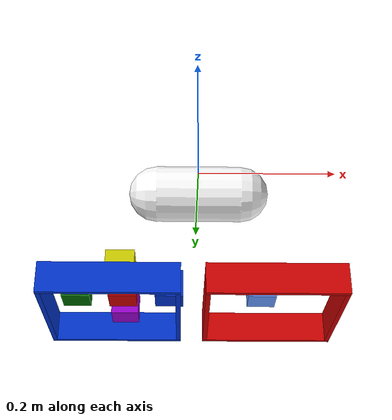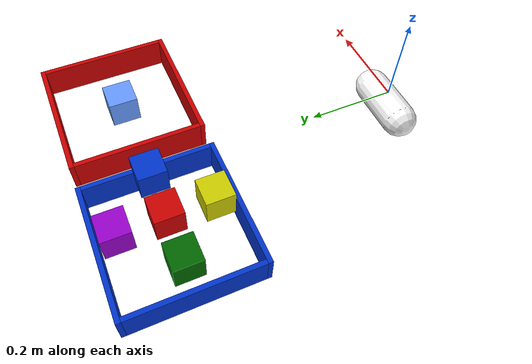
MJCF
<!-- Credit: adapted from Mujoco Menagerie -->
<!-- This might warrant refactoring for code-based XML modification like in AntMaze -->
<mujoco model="panda">
  <compiler angle="radian" meshdir="franka_emika_panda/assets" autolimits="true"/>

  <option integrator="implicitfast" impratio="10"/>

  <default>
    <default class="panda">
      <joint armature="0.1" damping="5" axis="0 0 1" range="-2.8973 2.8973"/>
      <general dyntype="none" biastype="affine" ctrlrange="-2.8973 2.8973" forcerange="-87 87"/>
      <default class="finger">
        <joint axis="0 1 0" type="slide" range="0 0.05"/>
      </default>

      <default class="visual">
        <geom type="mesh" contype="0" conaffinity="0" group="2"/>
      </default>
      <default class="collision">
        <geom type="mesh" group="3"/>
        <default class="finger_collision">
          <geom type="box" size="0.015 0.005 0.04" pos="0 0.0055 0.035" friction="10 0.005 0.0001"/>
        </default>
      </default>
    </default>
  </default>

  <asset>
    <!-- Visual meshes -->
    <mesh file="link0_0.obj"/>
    <mesh file="link0_1.obj"/>
    <mesh file="link0_2.obj"/>
    <mesh file="link0_3.obj"/>
    <mesh file="link0_4.obj"/>
    <mesh file="link0_5.obj"/>
    <mesh file="link0_7.obj"/>
    <mesh file="link0_8.obj"/>
    <mesh file="link0_9.obj"/>
    <mesh file="link0_10.obj"/>
    <mesh file="link0_11.obj"/>
    <mesh file="link1.obj"/>
    <mesh file="link2.obj"/>
    <mesh file="link3_0.obj"/>
    <mesh file="link3_1.obj"/>
    <mesh file="link3_2.obj"/>
    <mesh file="link3_3.obj"/>
    <mesh file="link4_0.obj"/>
    <mesh file="link4_1.obj"/>
    <mesh file="link4_2.obj"/>
    <mesh file="link4_3.obj"/>
    <mesh file="link5_0.obj"/>
    <mesh file="link5_1.obj"/>
    <mesh file="link5_2.obj"/>
    <mesh file="link6_0.obj"/>
    <mesh file="link6_1.obj"/>
    <mesh file="link6_2.obj"/>
    <mesh file="link6_3.obj"/>
    <mesh file="link6_4.obj"/>
    <mesh file="link6_5.obj"/>
    <mesh file="link6_6.obj"/>
    <mesh file="link6_7.obj"/>
    <mesh file="link6_8.obj"/>
    <mesh file="link6_9.obj"/>
    <mesh file="link6_10.obj"/>
    <mesh file="link6_11.obj"/>
    <mesh file="link6_12.obj"/>
    <mesh file="link6_13.obj"/>
    <mesh file="link6_14.obj"/>
    <mesh file="link6_15.obj"/>
    <mesh file="link6_16.obj"/>
    <mesh file="link7_0.obj"/>
    <mesh file="link7_1.obj"/>
    <mesh file="link7_2.obj"/>
    <mesh file="link7_3.obj"/>
    <mesh file="link7_4.obj"/>
    <mesh file="link7_5.obj"/>
    <mesh file="link7_6.obj"/>
    <mesh file="link7_7.obj"/>
    <mesh file="hand_0.obj"/>
    <mesh file="hand_1.obj"/>
    <mesh file="hand_2.obj"/>
    <mesh file="hand_3.obj"/>
    <mesh file="hand_4.obj"/>
    <mesh file="finger_0.obj"/>
    <mesh file="finger_1.obj"/>
  </asset>

  <worldbody>
    <light name="top" pos="0 0 2" mode="trackcom"/>
    <body name="binA" pos="-0.17 0.6 0">
      <geom name="binA1" pos="0 -0.14 0.033" size="0.145 0.005 0.033" type="box" rgba="0 0.2 0.8 1" contype="0" conaffinity="1"/>
      <geom name="binA2" pos="0 0.14 0.033" size="0.145 0.005 0.033" type="box" rgba="0 0.2 0.8 1" contype="0" conaffinity="1"/>
      <geom name="binA3" pos="0.14 0 0.033" size="0.005 0.135 0.033" type="box" rgba="0 0.2 0.8 1" contype="0" conaffinity="1"/>
      <geom name="binA4" pos="-0.14 0 0.033" size="0.005 0.135 0.033" type="box" rgba="0 0.2 0.8 1" contype="0" conaffinity="1"/>
    </body>
    <body name="binB" pos="0.17 0.6 0">
      <geom name="binB1" pos="0 -0.14 0.033" size="0.145 0.005 0.033" type="box" rgba="0.8 0 0 1" contype="0" conaffinity="1"/>
      <geom name="binB2" pos="0 0.14 0.033" size="0.145 0.005 0.033" type="box" rgba="0.8 0 0 1" contype="0" conaffinity="1"/>
      <geom name="binB3" pos="0.14 0 0.033" size="0.005 0.135 0.033" type="box" rgba="0.8 0 0 1" contype="0" conaffinity="1"/>
      <geom name="binB4" pos="-0.14 0 0.033" size="0.005 0.135 0.033" type="box" rgba="0.8 0 0 1" contype="0" conaffinity="1"/>
    </body>

    <body name="cube1" pos="-0.05 0.6 0.07">
      <freejoint/>
      <geom name="cube1_geom" size="0.03 0.03 0.03" type="box" rgba="0 0.2 0.8 1" contype="1" conaffinity="1"/>
    </body>

    <body name="cube2" pos="-0.15 0.6 0.07">
      <freejoint/>
      <geom name="cube2_geom" size="0.03 0.03 0.03" type="box" rgba="0.8 0 0 1" contype="1" conaffinity="1"/>
    </body>

    <body name="cube3" pos="-0.25 0.6 0.07">
      <freejoint/>
      <geom name="cube3_geom" size="0.03 0.03 0.03" type="box" rgba="0 0.4 0 1" contype="1" conaffinity="1"/>
    </body>

    <body name="cube4" pos="-0.15 0.5 0.07">
      <freejoint/>
      <geom name="cube4_geom" size="0.03 0.03 0.03" type="box" rgba="0.8 0.8 0 1" contype="1" conaffinity="1"/>
    </body>

    <body name="cube5" pos="-0.15 0.7 0.07">
      <freejoint/>
      <geom name="cube5_geom" size="0.03 0.03 0.03" type="box" rgba="0.6 0 0.8 1" contype="1" conaffinity="1"/>
    </body>

    <body name="goal1_marker" pos="0.15 0.6 0.07" gravcomp="1">
      <freejoint/>
      <geom name="goal1_marker_geom" size="0.03 0.03 0.03" type="box" rgba="0.4 0.6 1 1" contype="0" conaffinity="0"/>
    </body>

    <body name="goal2_marker" pos="0.15 0.6 0.07" gravcomp="1">
      <freejoint/>
      <geom name="goal2_marker_geom" size="0.03 0.03 0.03" type="box" rgba="1 0.4 0.4 1" contype="0" conaffinity="0"/>
    </body>

    <body name="goal3_marker" pos="0.15 0.6 0.07" gravcomp="1">
      <freejoint/>
      <geom name="goal3_marker_geom" size="0.03 0.03 0.03" type="box" rgba="0.3 1 0.3 1" contype="0" conaffinity="0"/>
    </body>

    <body name="goal4_marker" pos="0.15 0.6 0.07" gravcomp="1">
      <freejoint/>
      <geom name="goal4_marker_geom" size="0.03 0.03 0.03" type="box" rgba="1 1 0.4 1" contype="0" conaffinity="0"/>
    </body>

    <body name="goal5_marker" pos="0.15 0.6 0.07" gravcomp="1">
      <freejoint/>
      <geom name="goal5_marker_geom" size="0.03 0.03 0.03" type="box" rgba="0.8 0.2 1 1" contype="0" conaffinity="0"/>
    </body>

    <body name="tablelink" pos="0 .2 0">
      <geom name="table_geom" group="4" pos="0.0 0.0 0.0" size="2.8 2.4 0.1" type="plane" mass="10" friction="0.2 0.005 0.0001" contype="0" conaffinity="1"/>
    </body>

    <body name="cube_walls" pos="0 0 0">
      <geom name="back_wall" pos="0 0.35 0.15" size="0.41 0.01 0.15" type="box" rgba="1 1 1 0" contype="0" conaffinity="1"/>
      <geom name="front_wall" pos="0 0.85 0.15" size="0.41 0.01 0.15" type="box" rgba="1 1 1 0" contype="0" conaffinity="1"/>
      <geom name="left_wall" pos="-0.4 0.6 0.15" size="0.01 0.24 0.15" type="box" rgba="1 1 1 0" contype="0" conaffinity="1"/>
      <geom name="right_wall" pos="0.4 0.6 0.15" size="0.01 0.24 0.15" type="box" rgba="1 1 1 0" contype="0" conaffinity="1"/>
    </body>

    <body name="hand" pos="0 0 0" quat="0 -1 1 0" gravcomp="1"> <!-- Need to rotate by 180 degrees on y-axis, then 90 degrees z-axis -->
      <joint name="hand_x" type="slide" pos="0 0 0" axis="0 -1 0" range="-0.4 0.4"/> <!-- Choose axes relative to hand so joint lengths correspond to the world position -->
      <joint name="hand_y" type="slide" pos="0 0 0" axis="-1 0 0" range="0.35 0.85"/>
      <joint name="hand_z" type="slide" pos="0 0 0" axis="0 0 -1" range="0 0.3"/>
      <geom name="hand_geom" rgba="1 1 1 1" type="capsule" size="0.04 0.06" pos="0 0 0.035" quat="1 1 0 0" contype="0" conaffinity="1"/>
      <body name="left_finger" pos="0 0 0.0584">
        <inertial mass="0.015" pos="0 0 0" diaginertia="2.375e-6 2.375e-6 7.5e-7"/>
        <joint name="finger_joint1" class="finger"/>
          <geom name="left_finger_geom" rgba="0.25 0.25 0.25 1" class="finger_collision" contype="0" conaffinity="1"/>
      </body>
      <body name="right_finger" pos="0 0 0.0584" quat="0 0 0 1">
        <inertial mass="0.015" pos="0 0 0" diaginertia="2.375e-6 2.375e-6 7.5e-7"/>
        <joint name="finger_joint2" class="finger"/>
          <geom name="right_finger_geom" rgba="0.25 0.25 0.25 1" class="finger_collision" contype="0" conaffinity="1"/>
      </body>
    </body>
  </worldbody>

  <equality>
    <joint joint1="finger_joint1" joint2="finger_joint2" solimp="0.95 0.99 0.001" solref="0.005 1"/>
  </equality>

  <contact>
    <!-- Cube and other object collisions are handled using contype and conaffinity -->
    <pair geom1="table_geom" geom2="hand_geom"/>
    <pair geom1="table_geom" geom2="left_finger_geom"/>
    <pair geom1="table_geom" geom2="right_finger_geom"/>

    <!-- The finger and bin collisions aren't being registered that well so fingers will ghost through the bin if enough force is applied and the fingers are fast enough. -->
    <pair geom1="left_finger_geom" geom2="binA1"/>
    <pair geom1="left_finger_geom" geom2="binA2"/>
    <pair geom1="left_finger_geom" geom2="binA3"/>
    <pair geom1="left_finger_geom" geom2="binA4"/>
    <pair geom1="left_finger_geom" geom2="binB1"/>
    <pair geom1="left_finger_geom" geom2="binB2"/>
    <pair geom1="left_finger_geom" geom2="binB3"/>
    <pair geom1="left_finger_geom" geom2="binB4"/>
    <pair geom1="right_finger_geom" geom2="binA1"/>
    <pair geom1="right_finger_geom" geom2="binA2"/>
    <pair geom1="right_finger_geom" geom2="binA3"/>
    <pair geom1="right_finger_geom" geom2="binA4"/>
    <pair geom1="right_finger_geom" geom2="binB1"/>
    <pair geom1="right_finger_geom" geom2="binB2"/>
    <pair geom1="right_finger_geom" geom2="binB3"/>
    <pair geom1="right_finger_geom" geom2="binB4"/>
    <pair geom1="hand_geom" geom2="binA1"/>
    <pair geom1="hand_geom" geom2="binA2"/>
    <pair geom1="hand_geom" geom2="binA3"/>
    <pair geom1="hand_geom" geom2="binA4"/>
    <pair geom1="hand_geom" geom2="binB1"/>
    <pair geom1="hand_geom" geom2="binB2"/>
    <pair geom1="hand_geom" geom2="binB3"/>
    <pair geom1="hand_geom" geom2="binB4"/>

    <pair geom1="left_finger_geom" geom2="right_finger_geom"/>
  </contact>

  <actuator>
    <general class="panda" name="actuator_hand_x" joint="hand_x" gainprm="1000" biasprm="0 -1000 -100"/>
    <general class="panda" name="actuator_hand_y" joint="hand_y" gainprm="1000" biasprm="0 -1000 -100"/>
    <general class="panda" name="actuator_hand_z" joint="hand_z" gainprm="1000" biasprm="0 -1000 -100"/>
    <!-- Remap original ctrlrange (0, 0.05) to (0, 255): 0.05 * 500 / 255 = 0.09804 -->
    <general class="panda" name="actuator8" joint="finger_joint1" forcerange="-500 500" ctrlrange="0 255"
      gainprm="0.09804 0 0" biasprm="0 -500 -50"/>
    <general class="panda" name="actuator9" joint="finger_joint2" forcerange="-500 500" ctrlrange="0 255"
      gainprm="0.09804 0 0" biasprm="0 -500 -50"/>
  </actuator>
</mujoco>
